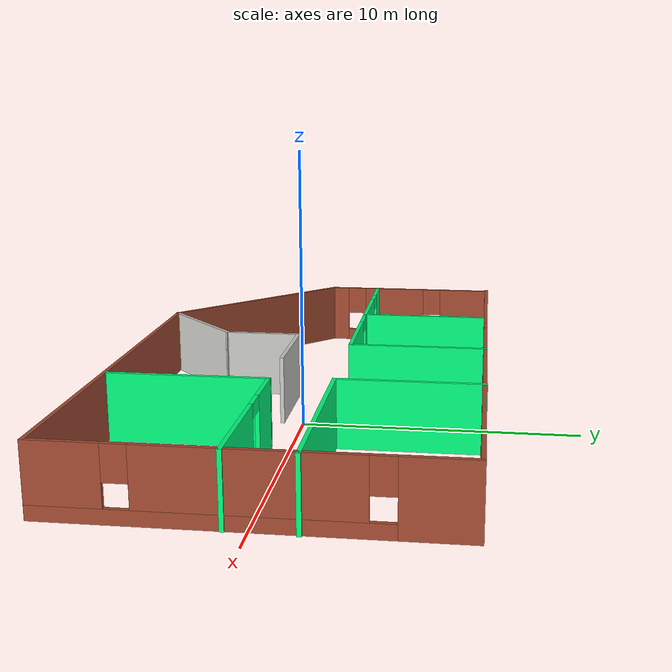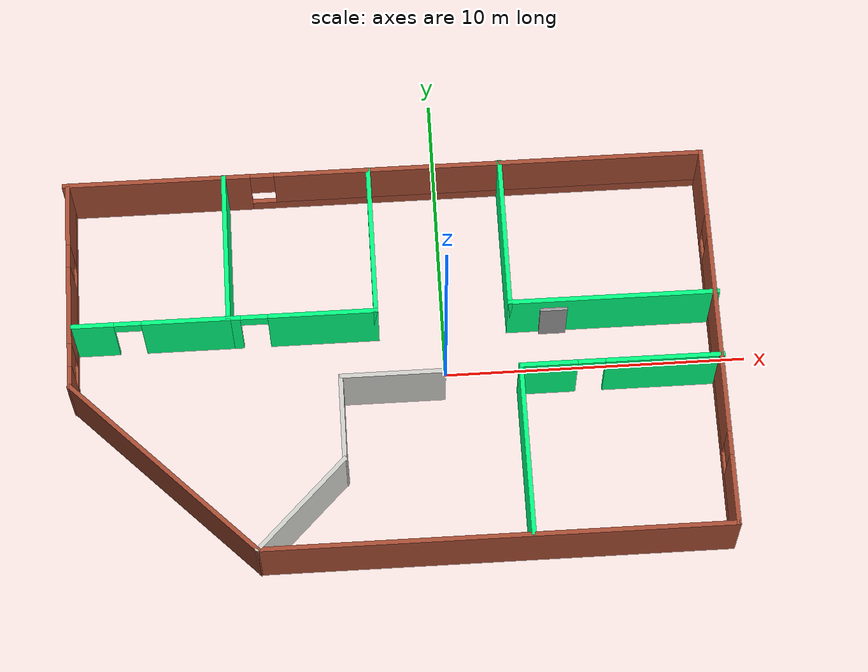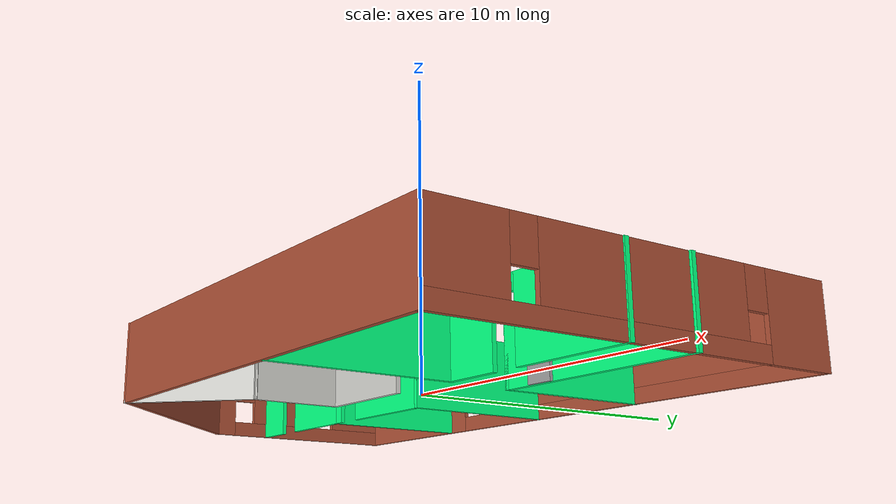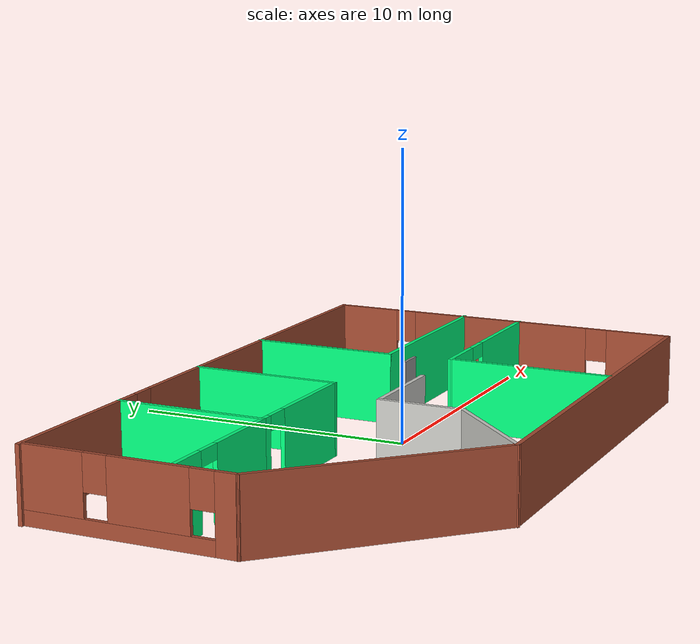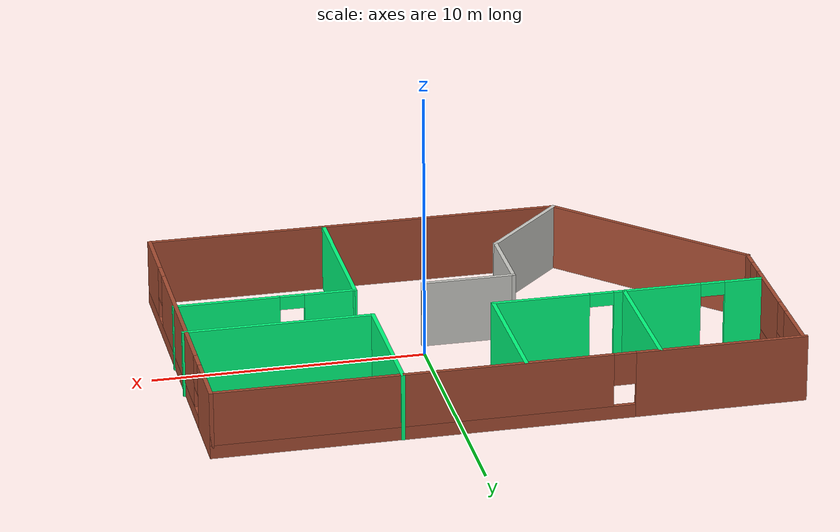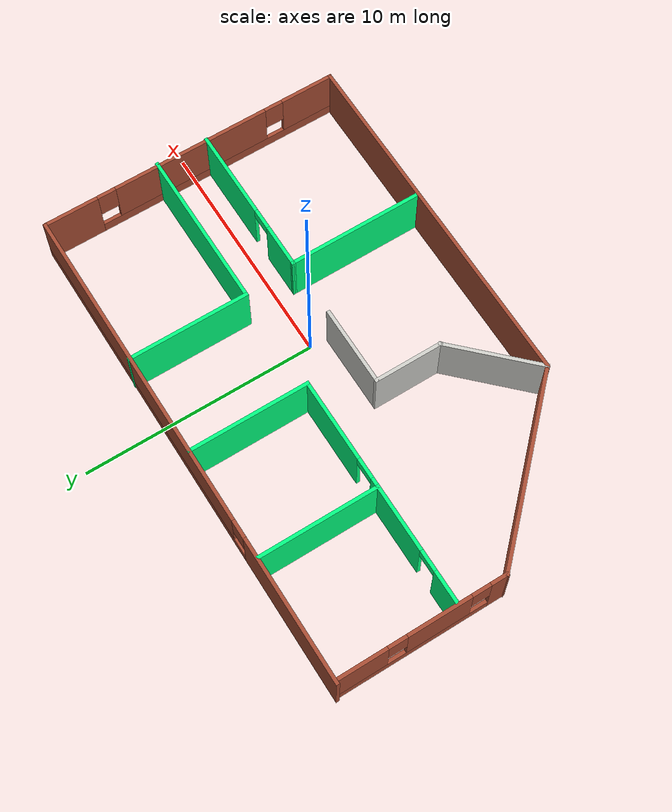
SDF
<?xml version='1.0'?>
<sdf version='1.6'>
  <model name='mybuilding'>
    <pose frame=''>-1.67201 0.007398 0 0 -0 0</pose>
    <link name='Door_3'>
      <collision name='Door_3_Collision'>
        <geometry>
          <box>
            <size>0.9 0.17 2</size>
          </box>
        </geometry>
        <pose frame=''>0 0 1 0 -0 0</pose>
      </collision>
      <visual name='Door_3_Visual'>
        <pose frame=''>0 0 1 0 -0 0</pose>
        <geometry>
          <box>
            <size>0.9 0.17 2</size>
          </box>
        </geometry>
        <material>
          <script>
            <uri>file://media/materials/scripts/gazebo.material</uri>
            <name>Gazebo/Grey</name>
          </script>
        </material>
      </visual>
      <pose frame=''>5.32033 1.38259 0 0 -0 0</pose>
    </link>
    <link name='Wall_10'>
      <pose frame=''>-7.95176 1.44932 0 0 -0 3.14159</pose>
      <visual name='Wall_10_Visual_0'>
        <pose frame=''>-1.15845 0 1.25 0 -0 0</pose>
        <geometry>
          <box>
            <size>2.93311 0.15 2.5</size>
          </box>
        </geometry>
        <material>
          <script>
            <uri>file://media/materials/scripts/gazebo.material</uri>
            <name>Gazebo/Grey</name>
          </script>
          <ambient>0 1 0.498039 1</ambient>
        </material>
        <meta>
          <layer>0</layer>
        </meta>
      </visual>
      <collision name='Wall_10_Collision_0'>
        <geometry>
          <box>
            <size>2.93311 0.15 2.5</size>
          </box>
        </geometry>
        <pose frame=''>-1.15845 0 1.25 0 -0 0</pose>
      </collision>
      <visual name='Wall_10_Visual_1'>
        <pose frame=''>1.91655 0 1.25 0 -0 0</pose>
        <geometry>
          <box>
            <size>1.41689 0.15 2.5</size>
          </box>
        </geometry>
        <material>
          <script>
            <uri>file://media/materials/scripts/gazebo.material</uri>
            <name>Gazebo/Grey</name>
          </script>
          <ambient>0 1 0.498039 1</ambient>
        </material>
        <meta>
          <layer>0</layer>
        </meta>
      </visual>
      <collision name='Wall_10_Collision_1'>
        <geometry>
          <box>
            <size>1.41689 0.15 2.5</size>
          </box>
        </geometry>
        <pose frame=''>1.91655 0 1.25 0 -0 0</pose>
      </collision>
      <visual name='Wall_10_Visual_2'>
        <pose frame=''>0.758107 0 2.25 0 -0 0</pose>
        <geometry>
          <box>
            <size>0.9 0.15 0.5</size>
          </box>
        </geometry>
        <material>
          <script>
            <uri>file://media/materials/scripts/gazebo.material</uri>
            <name>Gazebo/Grey</name>
          </script>
          <ambient>0 1 0.498039 1</ambient>
        </material>
        <meta>
          <layer>0</layer>
        </meta>
      </visual>
      <collision name='Wall_10_Collision_2'>
        <geometry>
          <box>
            <size>0.9 0.15 0.5</size>
          </box>
        </geometry>
        <pose frame=''>0.758107 0 2.25 0 -0 0</pose>
      </collision>
    </link>
    <link name='Wall_12'>
      <pose frame=''>-2.97676 1.44932 0 0 -0 0</pose>
      <visual name='Wall_12_Visual_0'>
        <pose frame=''>-2.2652 0 1.25 0 -0 0</pose>
        <geometry>
          <box>
            <size>0.469596 0.15 2.5</size>
          </box>
        </geometry>
        <material>
          <script>
            <uri>file://media/materials/scripts/gazebo.material</uri>
            <name>Gazebo/Grey</name>
          </script>
          <ambient>0 1 0.498039 1</ambient>
        </material>
        <meta>
          <layer>0</layer>
        </meta>
      </visual>
      <collision name='Wall_12_Collision_0'>
        <geometry>
          <box>
            <size>0.469596 0.15 2.5</size>
          </box>
        </geometry>
        <pose frame=''>-2.2652 0 1.25 0 -0 0</pose>
      </collision>
      <visual name='Wall_12_Visual_1'>
        <pose frame=''>0.684798 0 1.25 0 -0 0</pose>
        <geometry>
          <box>
            <size>3.6304 0.15 2.5</size>
          </box>
        </geometry>
        <material>
          <script>
            <uri>file://media/materials/scripts/gazebo.material</uri>
            <name>Gazebo/Grey</name>
          </script>
          <ambient>0 1 0.498039 1</ambient>
        </material>
        <meta>
          <layer>0</layer>
        </meta>
      </visual>
      <collision name='Wall_12_Collision_1'>
        <geometry>
          <box>
            <size>3.6304 0.15 2.5</size>
          </box>
        </geometry>
        <pose frame=''>0.684798 0 1.25 0 -0 0</pose>
      </collision>
      <visual name='Wall_12_Visual_2'>
        <pose frame=''>-1.5804 0 2.25 0 -0 0</pose>
        <geometry>
          <box>
            <size>0.9 0.15 0.5</size>
          </box>
        </geometry>
        <material>
          <script>
            <uri>file://media/materials/scripts/gazebo.material</uri>
            <name>Gazebo/Grey</name>
          </script>
          <ambient>0 1 0.498039 1</ambient>
        </material>
        <meta>
          <layer>0</layer>
        </meta>
      </visual>
      <collision name='Wall_12_Collision_2'>
        <geometry>
          <box>
            <size>0.9 0.15 0.5</size>
          </box>
        </geometry>
        <pose frame=''>-1.5804 0 2.25 0 -0 0</pose>
      </collision>
    </link>
    <link name='Wall_13'>
      <collision name='Wall_13_Collision'>
        <geometry>
          <box>
            <size>5.25 0.15 2.5</size>
          </box>
        </geometry>
        <pose frame=''>0 0 1.25 0 -0 0</pose>
      </collision>
      <visual name='Wall_13_Visual'>
        <pose frame=''>0 0 1.25 0 -0 0</pose>
        <geometry>
          <box>
            <size>5.25 0.15 2.5</size>
          </box>
        </geometry>
        <material>
          <script>
            <uri>file://media/materials/scripts/gazebo.material</uri>
            <name>Gazebo/Grey</name>
          </script>
          <ambient>0 1 0.498039 1</ambient>
        </material>
        <meta>
          <layer>0</layer>
        </meta>
      </visual>
      <pose frame=''>-0.551764 3.99932 0 0 -0 1.5708</pose>
    </link>
    <link name='Wall_15'>
      <collision name='Wall_15_Collision'>
        <geometry>
          <box>
            <size>5.25 0.15 2.5</size>
          </box>
        </geometry>
        <pose frame=''>0 0 1.25 0 -0 0</pose>
      </collision>
      <visual name='Wall_15_Visual'>
        <pose frame=''>0 0 1.25 0 -0 0</pose>
        <geometry>
          <box>
            <size>5.25 0.15 2.5</size>
          </box>
        </geometry>
        <material>
          <script>
            <uri>file://media/materials/scripts/gazebo.material</uri>
            <name>Gazebo/Grey</name>
          </script>
          <ambient>0 1 0.498039 1</ambient>
        </material>
        <meta>
          <layer>0</layer>
        </meta>
      </visual>
      <pose frame=''>3.86573 4.02722 0 0 0 -1.5708</pose>
    </link>
    <link name='Wall_16'>
      <collision name='Wall_16_Collision'>
        <geometry>
          <box>
            <size>7 0.15 2.5</size>
          </box>
        </geometry>
        <pose frame=''>0 0 1.25 0 -0 0</pose>
      </collision>
      <visual name='Wall_16_Visual'>
        <pose frame=''>0 0 1.25 0 -0 0</pose>
        <geometry>
          <box>
            <size>7 0.15 2.5</size>
          </box>
        </geometry>
        <material>
          <script>
            <uri>file://media/materials/scripts/gazebo.material</uri>
            <name>Gazebo/Grey</name>
          </script>
          <ambient>0 1 0.498039 1</ambient>
        </material>
        <meta>
          <layer>0</layer>
        </meta>
      </visual>
      <pose frame=''>7.29073 1.47722 0 0 -0 0</pose>
    </link>
    <link name='Wall_18'>
      <pose frame=''>7.3796 -0.753441 0 0 -0 3.14159</pose>
      <visual name='Wall_18_Visual_0'>
        <pose frame=''>-1.41679 0 1.25 0 -0 0</pose>
        <geometry>
          <box>
            <size>3.91643 0.15 2.5</size>
          </box>
        </geometry>
        <material>
          <script>
            <uri>file://media/materials/scripts/gazebo.material</uri>
            <name>Gazebo/Grey</name>
          </script>
          <ambient>0 1 0.498039 1</ambient>
        </material>
        <meta>
          <layer>0</layer>
        </meta>
      </visual>
      <collision name='Wall_18_Collision_0'>
        <geometry>
          <box>
            <size>3.91643 0.15 2.5</size>
          </box>
        </geometry>
        <pose frame=''>-1.41679 0 1.25 0 -0 0</pose>
      </collision>
      <visual name='Wall_18_Visual_1'>
        <pose frame=''>2.40821 0 1.25 0 -0 0</pose>
        <geometry>
          <box>
            <size>1.93357 0.15 2.5</size>
          </box>
        </geometry>
        <material>
          <script>
            <uri>file://media/materials/scripts/gazebo.material</uri>
            <name>Gazebo/Grey</name>
          </script>
          <ambient>0 1 0.498039 1</ambient>
        </material>
        <meta>
          <layer>0</layer>
        </meta>
      </visual>
      <collision name='Wall_18_Collision_1'>
        <geometry>
          <box>
            <size>1.93357 0.15 2.5</size>
          </box>
        </geometry>
        <pose frame=''>2.40821 0 1.25 0 -0 0</pose>
      </collision>
      <visual name='Wall_18_Visual_2'>
        <pose frame=''>0.991428 0 2.25 0 -0 0</pose>
        <geometry>
          <box>
            <size>0.9 0.15 0.5</size>
          </box>
        </geometry>
        <material>
          <script>
            <uri>file://media/materials/scripts/gazebo.material</uri>
            <name>Gazebo/Grey</name>
          </script>
          <ambient>0 1 0.498039 1</ambient>
        </material>
        <meta>
          <layer>0</layer>
        </meta>
      </visual>
      <collision name='Wall_18_Collision_2'>
        <geometry>
          <box>
            <size>0.9 0.15 0.5</size>
          </box>
        </geometry>
        <pose frame=''>0.991428 0 2.25 0 -0 0</pose>
      </collision>
    </link>
    <link name='Wall_19'>
      <collision name='Wall_19_Collision'>
        <geometry>
          <box>
            <size>5.88375 0.15 2.5</size>
          </box>
        </geometry>
        <pose frame=''>0 0 1.25 0 -0 0</pose>
      </collision>
      <visual name='Wall_19_Visual'>
        <pose frame=''>0 0 1.25 0 -0 0</pose>
        <geometry>
          <box>
            <size>5.88375 0.15 2.5</size>
          </box>
        </geometry>
        <material>
          <script>
            <uri>file://media/materials/scripts/gazebo.material</uri>
            <name>Gazebo/Grey</name>
          </script>
          <ambient>0 1 0.498039 1</ambient>
        </material>
        <meta>
          <layer>0</layer>
        </meta>
      </visual>
      <pose frame=''>4.08291 -3.62031 0 0 0 -1.56964</pose>
    </link>
    <link name='Wall_21'>
      <collision name='Wall_21_Collision'>
        <geometry>
          <box>
            <size>4.25 0.15 2.5</size>
          </box>
        </geometry>
        <pose frame=''>0 0 1.25 0 -0 0</pose>
      </collision>
      <visual name='Wall_21_Visual'>
        <pose frame=''>0 0 1.25 0 -0 0</pose>
        <geometry>
          <box>
            <size>4.25 0.15 2.5</size>
          </box>
        </geometry>
        <material>
          <script>
            <uri>file://media/materials/scripts/gazebo.material</uri>
            <name>Gazebo/CeilingTiled</name>
          </script>
          <ambient>0 0 1 1</ambient>
        </material>
        <meta>
          <layer>0</layer>
        </meta>
      </visual>
      <pose frame=''>-3.26617 -5.09658 0 0 -0 0.785398</pose>
    </link>
    <link name='Wall_22'>
      <collision name='Wall_22_Collision'>
        <geometry>
          <box>
            <size>3 0.15 2.5</size>
          </box>
        </geometry>
        <pose frame=''>0 0 1.25 0 -0 0</pose>
      </collision>
      <visual name='Wall_22_Visual'>
        <pose frame=''>0 0 1.25 0 -0 0</pose>
        <geometry>
          <box>
            <size>3 0.15 2.5</size>
          </box>
        </geometry>
        <material>
          <script>
            <uri>file://media/materials/scripts/gazebo.material</uri>
            <name>Gazebo/CeilingTiled</name>
          </script>
          <ambient>0 0 1 1</ambient>
        </material>
        <meta>
          <layer>0</layer>
        </meta>
      </visual>
      <pose frame=''>-1.8166 -2.22201 0 0 -0 1.5708</pose>
    </link>
    <link name='Wall_23'>
      <collision name='Wall_23_Collision'>
        <geometry>
          <box>
            <size>3.5 0.15 2.5</size>
          </box>
        </geometry>
        <pose frame=''>0 0 1.25 0 -0 0</pose>
      </collision>
      <visual name='Wall_23_Visual'>
        <pose frame=''>0 0 1.25 0 -0 0</pose>
        <geometry>
          <box>
            <size>3.5 0.15 2.5</size>
          </box>
        </geometry>
        <material>
          <script>
            <uri>file://media/materials/scripts/gazebo.material</uri>
            <name>Gazebo/CeilingTiled</name>
          </script>
          <ambient>0 0 1 1</ambient>
        </material>
        <meta>
          <layer>0</layer>
        </meta>
      </visual>
      <pose frame=''>-0.141597 -0.797013 0 0 -0 0</pose>
    </link>
    <link name='Wall_3'>
      <pose frame=''>-0.040735 6.55385 0 0 -0 0</pose>
      <visual name='Wall_3_Visual_0'>
        <pose frame=''>-7.61075 0 1.25 0 -0 0</pose>
        <geometry>
          <box>
            <size>6.2785 0.15 2.5</size>
          </box>
        </geometry>
        <material>
          <script>
            <uri>file://media/materials/scripts/gazebo.material</uri>
            <name>Gazebo/Bricks</name>
          </script>
          <ambient>0.996078 0.47451 0.0196078 1</ambient>
        </material>
        <meta>
          <layer>0</layer>
        </meta>
      </visual>
      <collision name='Wall_3_Collision_0'>
        <geometry>
          <box>
            <size>6.2785 0.15 2.5</size>
          </box>
        </geometry>
        <pose frame=''>-7.61075 0 1.25 0 -0 0</pose>
      </collision>
      <visual name='Wall_3_Visual_1'>
        <pose frame=''>3.13925 0 0.25 0 -0 0</pose>
        <geometry>
          <box>
            <size>15.2215 0.15 0.5</size>
          </box>
        </geometry>
        <material>
          <script>
            <uri>file://media/materials/scripts/gazebo.material</uri>
            <name>Gazebo/Bricks</name>
          </script>
          <ambient>0.996078 0.47451 0.0196078 1</ambient>
        </material>
        <meta>
          <layer>0</layer>
        </meta>
      </visual>
      <collision name='Wall_3_Collision_1'>
        <geometry>
          <box>
            <size>15.2215 0.15 0.5</size>
          </box>
        </geometry>
        <pose frame=''>3.13925 0 0.25 0 -0 0</pose>
      </collision>
      <visual name='Wall_3_Visual_2'>
        <pose frame=''>3.53925 0 1.5 0 -0 0</pose>
        <geometry>
          <box>
            <size>14.4215 0.15 2</size>
          </box>
        </geometry>
        <material>
          <script>
            <uri>file://media/materials/scripts/gazebo.material</uri>
            <name>Gazebo/Bricks</name>
          </script>
          <ambient>0.996078 0.47451 0.0196078 1</ambient>
        </material>
        <meta>
          <layer>0</layer>
        </meta>
      </visual>
      <collision name='Wall_3_Collision_2'>
        <geometry>
          <box>
            <size>14.4215 0.15 2</size>
          </box>
        </geometry>
        <pose frame=''>3.53925 0 1.5 0 -0 0</pose>
      </collision>
      <visual name='Wall_3_Visual_3'>
        <pose frame=''>-4.0715 0 1.9 0 -0 0</pose>
        <geometry>
          <box>
            <size>0.8 0.15 1.2</size>
          </box>
        </geometry>
        <material>
          <script>
            <uri>file://media/materials/scripts/gazebo.material</uri>
            <name>Gazebo/Bricks</name>
          </script>
          <ambient>0.996078 0.47451 0.0196078 1</ambient>
        </material>
        <meta>
          <layer>0</layer>
        </meta>
      </visual>
      <collision name='Wall_3_Collision_3'>
        <geometry>
          <box>
            <size>0.8 0.15 1.2</size>
          </box>
        </geometry>
        <pose frame=''>-4.0715 0 1.9 0 -0 0</pose>
      </collision>
    </link>
    <link name='Wall_4'>
      <pose frame=''>10.6343 0.003849 0 0 0 -1.5708</pose>
      <visual name='Wall_4_Visual_0'>
        <pose frame=''>-5.43285 0 1.25 0 -0 0</pose>
        <geometry>
          <box>
            <size>2.3843 0.15 2.5</size>
          </box>
        </geometry>
        <material>
          <script>
            <uri>file://media/materials/scripts/gazebo.material</uri>
            <name>Gazebo/Bricks</name>
          </script>
          <ambient>0.996078 0.47451 0.0196078 1</ambient>
        </material>
        <meta>
          <layer>0</layer>
        </meta>
      </visual>
      <collision name='Wall_4_Collision_0'>
        <geometry>
          <box>
            <size>2.3843 0.15 2.5</size>
          </box>
        </geometry>
        <pose frame=''>-5.43285 0 1.25 0 -0 0</pose>
      </collision>
      <visual name='Wall_4_Visual_1'>
        <pose frame=''>1.19215 0 0.25 0 -0 0</pose>
        <geometry>
          <box>
            <size>10.8657 0.15 0.5</size>
          </box>
        </geometry>
        <material>
          <script>
            <uri>file://media/materials/scripts/gazebo.material</uri>
            <name>Gazebo/Bricks</name>
          </script>
          <ambient>0.996078 0.47451 0.0196078 1</ambient>
        </material>
        <meta>
          <layer>0</layer>
        </meta>
      </visual>
      <collision name='Wall_4_Collision_1'>
        <geometry>
          <box>
            <size>10.8657 0.15 0.5</size>
          </box>
        </geometry>
        <pose frame=''>1.19215 0 0.25 0 -0 0</pose>
      </collision>
      <visual name='Wall_4_Visual_2'>
        <pose frame=''>0.000551 0 1.5 0 -0 0</pose>
        <geometry>
          <box>
            <size>6.8825 0.15 2</size>
          </box>
        </geometry>
        <material>
          <script>
            <uri>file://media/materials/scripts/gazebo.material</uri>
            <name>Gazebo/Bricks</name>
          </script>
          <ambient>0.996078 0.47451 0.0196078 1</ambient>
        </material>
        <meta>
          <layer>0</layer>
        </meta>
      </visual>
      <collision name='Wall_4_Collision_2'>
        <geometry>
          <box>
            <size>6.8825 0.15 2</size>
          </box>
        </geometry>
        <pose frame=''>0.000551 0 1.5 0 -0 0</pose>
      </collision>
      <visual name='Wall_4_Visual_3'>
        <pose frame=''>5.4334 0 1.5 0 -0 0</pose>
        <geometry>
          <box>
            <size>2.3832 0.15 2</size>
          </box>
        </geometry>
        <material>
          <script>
            <uri>file://media/materials/scripts/gazebo.material</uri>
            <name>Gazebo/Bricks</name>
          </script>
          <ambient>0.996078 0.47451 0.0196078 1</ambient>
        </material>
        <meta>
          <layer>0</layer>
        </meta>
      </visual>
      <collision name='Wall_4_Collision_3'>
        <geometry>
          <box>
            <size>2.3832 0.15 2</size>
          </box>
        </geometry>
        <pose frame=''>5.4334 0 1.5 0 -0 0</pose>
      </collision>
      <visual name='Wall_4_Visual_4'>
        <pose frame=''>-3.8407 0 1.9 0 -0 0</pose>
        <geometry>
          <box>
            <size>0.8 0.15 1.2</size>
          </box>
        </geometry>
        <material>
          <script>
            <uri>file://media/materials/scripts/gazebo.material</uri>
            <name>Gazebo/Bricks</name>
          </script>
          <ambient>0.996078 0.47451 0.0196078 1</ambient>
        </material>
        <meta>
          <layer>0</layer>
        </meta>
      </visual>
      <collision name='Wall_4_Collision_4'>
        <geometry>
          <box>
            <size>0.8 0.15 1.2</size>
          </box>
        </geometry>
        <pose frame=''>-3.8407 0 1.9 0 -0 0</pose>
      </collision>
      <visual name='Wall_4_Visual_5'>
        <pose frame=''>3.8418 0 1.9 0 -0 0</pose>
        <geometry>
          <box>
            <size>0.8 0.15 1.2</size>
          </box>
        </geometry>
        <material>
          <script>
            <uri>file://media/materials/scripts/gazebo.material</uri>
            <name>Gazebo/Bricks</name>
          </script>
          <ambient>0.996078 0.47451 0.0196078 1</ambient>
        </material>
        <meta>
          <layer>0</layer>
        </meta>
      </visual>
      <collision name='Wall_4_Collision_5'>
        <geometry>
          <box>
            <size>0.8 0.15 1.2</size>
          </box>
        </geometry>
        <pose frame=''>3.8418 0 1.9 0 -0 0</pose>
      </collision>
    </link>
    <link name='Wall_5'>
      <collision name='Wall_5_Collision'>
        <geometry>
          <box>
            <size>15.5 0.15 2.5</size>
          </box>
        </geometry>
        <pose frame=''>0 0 1.25 0 -0 0</pose>
      </collision>
      <visual name='Wall_5_Visual'>
        <pose frame=''>0 0 1.25 0 -0 0</pose>
        <geometry>
          <box>
            <size>15.5 0.15 2.5</size>
          </box>
        </geometry>
        <material>
          <script>
            <uri>file://media/materials/scripts/gazebo.material</uri>
            <name>Gazebo/Bricks</name>
          </script>
          <ambient>0.996078 0.47451 0.0196078 1</ambient>
        </material>
        <meta>
          <layer>0</layer>
        </meta>
      </visual>
      <pose frame=''>2.95926 -6.54615 0 0 -0 3.14159</pose>
    </link>
    <link name='Wall_6'>
      <collision name='Wall_6_Collision'>
        <geometry>
          <box>
            <size>8.5 0.15 2.5</size>
          </box>
        </geometry>
        <pose frame=''>0 0 1.25 0 -0 0</pose>
      </collision>
      <visual name='Wall_6_Visual'>
        <pose frame=''>0 0 1.25 0 -0 0</pose>
        <geometry>
          <box>
            <size>8.5 0.15 2.5</size>
          </box>
        </geometry>
        <material>
          <script>
            <uri>file://media/materials/scripts/gazebo.material</uri>
            <name>Gazebo/Bricks</name>
          </script>
          <ambient>0.996078 0.47451 0.0196078 1</ambient>
        </material>
        <meta>
          <layer>0</layer>
        </meta>
      </visual>
      <pose frame=''>-7.66791 -3.59398 0 0 -0 2.35619</pose>
    </link>
    <link name='Wall_7'>
      <pose frame=''>-10.6201 2.90819 0 0 -0 1.5708</pose>
      <visual name='Wall_7_Visual_0'>
        <pose frame=''>-3.23506 0 1.25 0 -0 0</pose>
        <geometry>
          <box>
            <size>0.779871 0.15 2.5</size>
          </box>
        </geometry>
        <material>
          <script>
            <uri>file://media/materials/scripts/gazebo.material</uri>
            <name>Gazebo/Bricks</name>
          </script>
          <ambient>0.996078 0.47451 0.0196078 1</ambient>
        </material>
        <meta>
          <layer>0</layer>
        </meta>
      </visual>
      <collision name='Wall_7_Collision_0'>
        <geometry>
          <box>
            <size>0.779871 0.15 2.5</size>
          </box>
        </geometry>
        <pose frame=''>-3.23506 0 1.25 0 -0 0</pose>
      </collision>
      <visual name='Wall_7_Visual_1'>
        <pose frame=''>0.389936 0 0.25 0 -0 0</pose>
        <geometry>
          <box>
            <size>6.47013 0.15 0.5</size>
          </box>
        </geometry>
        <material>
          <script>
            <uri>file://media/materials/scripts/gazebo.material</uri>
            <name>Gazebo/Bricks</name>
          </script>
          <ambient>0.996078 0.47451 0.0196078 1</ambient>
        </material>
        <meta>
          <layer>0</layer>
        </meta>
      </visual>
      <collision name='Wall_7_Collision_1'>
        <geometry>
          <box>
            <size>6.47013 0.15 0.5</size>
          </box>
        </geometry>
        <pose frame=''>0.389936 0 0.25 0 -0 0</pose>
      </collision>
      <visual name='Wall_7_Visual_2'>
        <pose frame=''>-0.68023 0 1.5 0 -0 0</pose>
        <geometry>
          <box>
            <size>2.7298 0.15 2</size>
          </box>
        </geometry>
        <material>
          <script>
            <uri>file://media/materials/scripts/gazebo.material</uri>
            <name>Gazebo/Bricks</name>
          </script>
          <ambient>0.996078 0.47451 0.0196078 1</ambient>
        </material>
        <meta>
          <layer>0</layer>
        </meta>
      </visual>
      <collision name='Wall_7_Collision_2'>
        <geometry>
          <box>
            <size>2.7298 0.15 2</size>
          </box>
        </geometry>
        <pose frame=''>-0.68023 0 1.5 0 -0 0</pose>
      </collision>
      <visual name='Wall_7_Visual_3'>
        <pose frame=''>2.55483 0 1.5 0 -0 0</pose>
        <geometry>
          <box>
            <size>2.14033 0.15 2</size>
          </box>
        </geometry>
        <material>
          <script>
            <uri>file://media/materials/scripts/gazebo.material</uri>
            <name>Gazebo/Bricks</name>
          </script>
          <ambient>0.996078 0.47451 0.0196078 1</ambient>
        </material>
        <meta>
          <layer>0</layer>
        </meta>
      </visual>
      <collision name='Wall_7_Collision_3'>
        <geometry>
          <box>
            <size>2.14033 0.15 2</size>
          </box>
        </geometry>
        <pose frame=''>2.55483 0 1.5 0 -0 0</pose>
      </collision>
      <visual name='Wall_7_Visual_4'>
        <pose frame=''>-2.44513 0 1.9 0 -0 0</pose>
        <geometry>
          <box>
            <size>0.8 0.15 1.2</size>
          </box>
        </geometry>
        <material>
          <script>
            <uri>file://media/materials/scripts/gazebo.material</uri>
            <name>Gazebo/Bricks</name>
          </script>
          <ambient>0.996078 0.47451 0.0196078 1</ambient>
        </material>
        <meta>
          <layer>0</layer>
        </meta>
      </visual>
      <collision name='Wall_7_Collision_4'>
        <geometry>
          <box>
            <size>0.8 0.15 1.2</size>
          </box>
        </geometry>
        <pose frame=''>-2.44513 0 1.9 0 -0 0</pose>
      </collision>
      <visual name='Wall_7_Visual_5'>
        <pose frame=''>1.08467 0 1.9 0 -0 0</pose>
        <geometry>
          <box>
            <size>0.8 0.15 1.2</size>
          </box>
        </geometry>
        <material>
          <script>
            <uri>file://media/materials/scripts/gazebo.material</uri>
            <name>Gazebo/Bricks</name>
          </script>
          <ambient>0.996078 0.47451 0.0196078 1</ambient>
        </material>
        <meta>
          <layer>0</layer>
        </meta>
      </visual>
      <collision name='Wall_7_Collision_5'>
        <geometry>
          <box>
            <size>0.8 0.15 1.2</size>
          </box>
        </geometry>
        <pose frame=''>1.08467 0 1.9 0 -0 0</pose>
      </collision>
    </link>
    <link name='Wall_9'>
      <collision name='Wall_9_Collision'>
        <geometry>
          <box>
            <size>5.25 0.15 2.5</size>
          </box>
        </geometry>
        <pose frame=''>0 0 1.25 0 -0 0</pose>
      </collision>
      <visual name='Wall_9_Visual'>
        <pose frame=''>0 0 1.25 0 -0 0</pose>
        <geometry>
          <box>
            <size>5.25 0.15 2.5</size>
          </box>
        </geometry>
        <material>
          <script>
            <uri>file://media/materials/scripts/gazebo.material</uri>
            <name>Gazebo/Grey</name>
          </script>
          <ambient>0 1 0.498039 1</ambient>
        </material>
        <meta>
          <layer>0</layer>
        </meta>
      </visual>
      <pose frame=''>-5.40176 3.99932 0 0 0 -1.5708</pose>
    </link>
    <static>1</static>
  </model>
</sdf>
